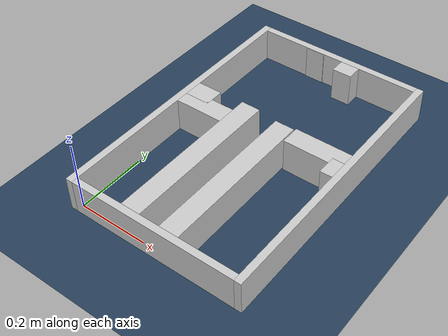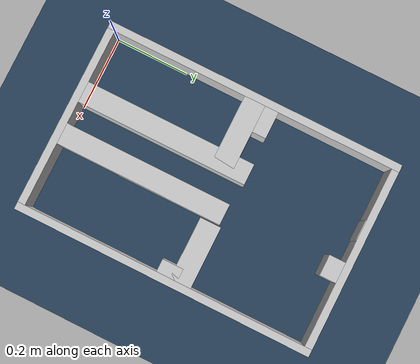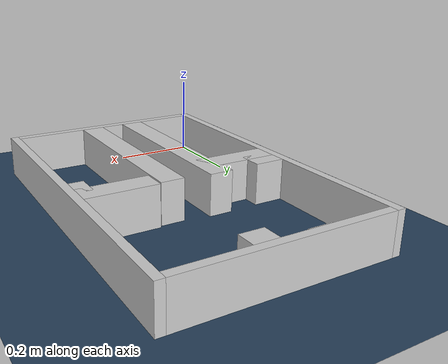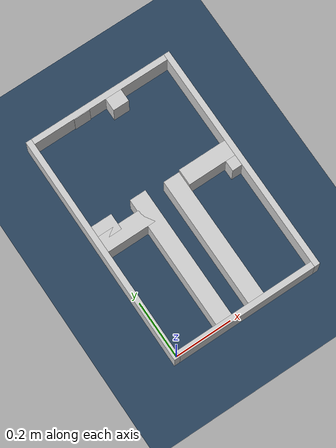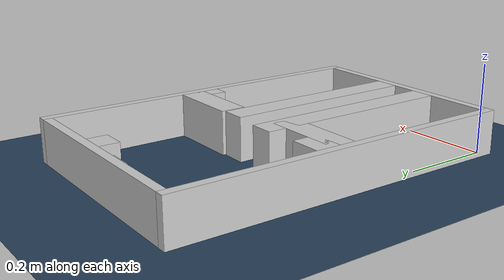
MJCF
<?xml version="1.0" ?>
<mujoco model="generated_real_template">
  <compiler angle="degree"/>
  <option timestep="0.002" integrator="implicitfast" iterations="100" cone="elliptic"/>
  <default>
    <geom density="1"/>
  </default>
  <asset>
    <texture builtin="gradient" height="3072" rgb1="0.3 0.5 0.7" rgb2="0 0 0" type="skybox" width="512"/>
    <texture builtin="checker" height="300" mark="edge" markrgb="0.8 0.8 0.8" name="groundplane" rgb1="0.2 0.3 0.4" rgb2="0.1 0.2 0.3" type="2d" width="300"/>
    <material name="groundplane" reflectance="0.2" texrepeat="5 5" texture="groundplane" texuniform="true"/>
  </asset>
  <worldbody>
    <light dir="0 0 -1" directional="true" pos="0 0 1.5"/>
    <geom name="floor" type="plane" condim="4" friction="0.5 0.005 0.001" material="groundplane" size="0 0 0.05"/>
    <body name="walls">
      <geom name="wall_boundary_left" type="box" condim="4" friction="1.0 0.005 0.0001" rgba="0.8 0.8 0.8 1" pos="-0.010000 0.387500 0.050000" euler="0 0 0.000000" size="0.010000 0.407500 0.050000"/>
      <geom name="wall_boundary_right" type="box" condim="4" friction="1.0 0.005 0.0001" rgba="0.8 0.8 0.8 1" pos="0.500000 0.387500 0.050000" euler="0 0 0.000000" size="0.010000 0.407500 0.050000"/>
      <geom name="wall_boundary_bottom" type="box" condim="4" friction="1.0 0.005 0.0001" rgba="0.8 0.8 0.8 1" pos="0.245000 -0.010000 0.050000" euler="0 0 0.000000" size="0.245000 0.010000 0.050000"/>
      <geom name="wall_boundary_top" type="box" condim="4" friction="1.0 0.005 0.0001" rgba="0.8 0.8 0.8 1" pos="0.245000 0.785000 0.050000" euler="0 0 0.000000" size="0.245000 0.010000 0.050000"/>
      <geom name="wall_inner_1_1" type="box" condim="4" friction="1.0 0.005 0.0001" rgba="0.8 0.8 0.8 1" pos="0.288854 0.227335 0.050000" euler="0 0 90.000000" size="0.227335 0.028500 0.050000"/>
      <geom name="wall_inner_1_2" type="box" condim="4" friction="1.0 0.005 0.0001" rgba="0.8 0.8 0.8 1" pos="0.288854 0.752754 0.050000" euler="0 0 90.000000" size="0.022246 0.028500 0.050000"/>
      <geom name="wall_inner_2_1" type="box" condim="4" friction="1.0 0.005 0.0001" rgba="0.8 0.8 0.8 1" pos="0.093202 0.394633 0.050000" euler="0 0 0.000000" size="0.093202 0.028500 0.050000"/>
      <geom name="wall_inner_2_2" type="box" condim="4" friction="1.0 0.005 0.0001" rgba="0.8 0.8 0.8 1" pos="0.472504 0.394633 0.050000" euler="0 0 0.000000" size="0.017496 0.028500 0.050000"/>
      <geom name="wall_inner_3_1" type="box" condim="4" friction="1.0 0.005 0.0001" rgba="0.8 0.8 0.8 1" pos="0.171945 0.232250 0.050000" euler="0 0 90.000000" size="0.232250 0.028500 0.050000"/>
      <geom name="wall_inner_3_2" type="box" condim="4" friction="1.0 0.005 0.0001" rgba="0.8 0.8 0.8 1" pos="0.171945 0.773978 0.050000" euler="0 0 90.000000" size="0.001022 0.028500 0.050000"/>
      <geom name="wall_inner_4_1" type="box" condim="4" friction="1.0 0.005 0.0001" rgba="0.8 0.8 0.8 1" pos="0.036440 0.431860 0.050000" euler="0 0 0.000000" size="0.036440 0.028500 0.050000"/>
      <geom name="wall_inner_4_2" type="box" condim="4" friction="1.0 0.005 0.0001" rgba="0.8 0.8 0.8 1" pos="0.405622 0.431860 0.050000" euler="0 0 0.000000" size="0.084378 0.028500 0.050000"/>
    </body>
  </worldbody>
</mujoco>
